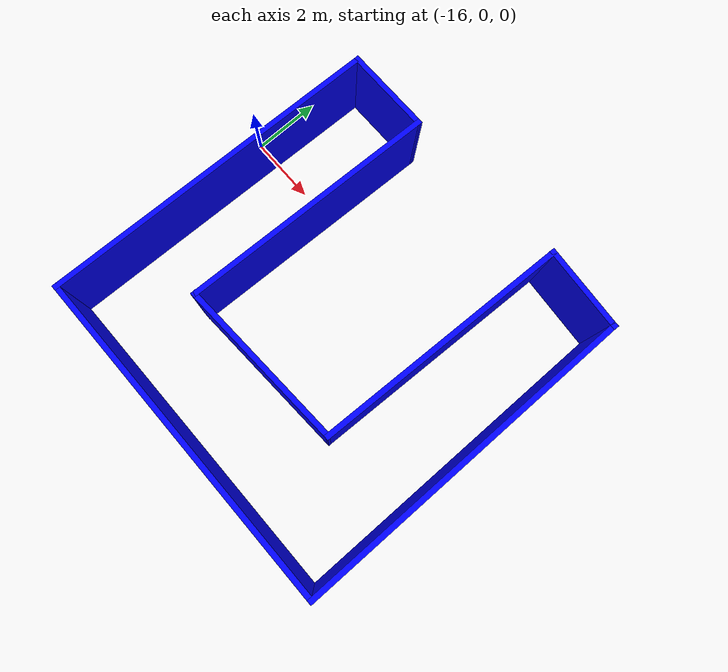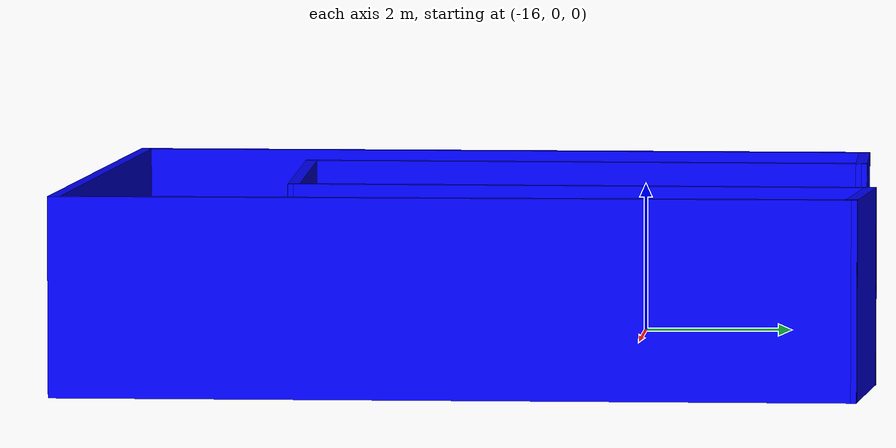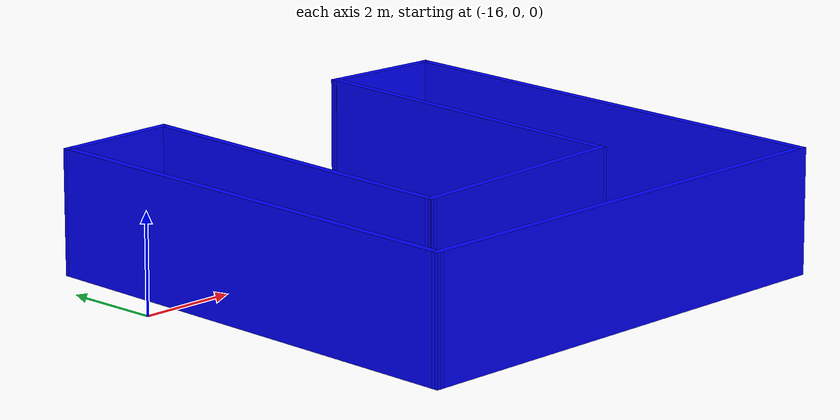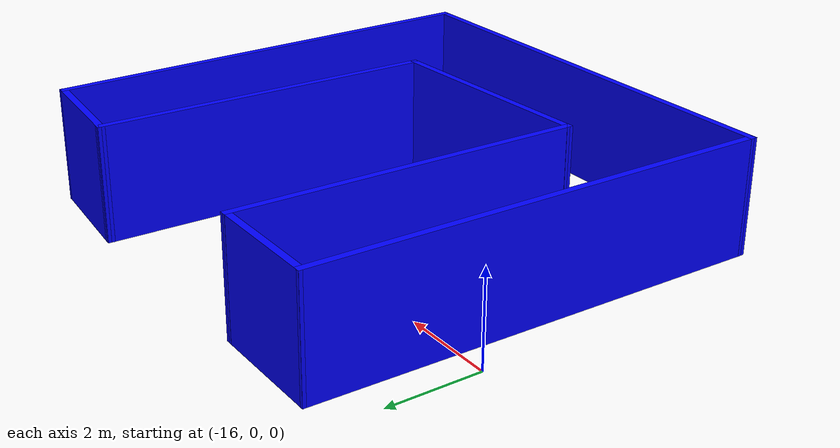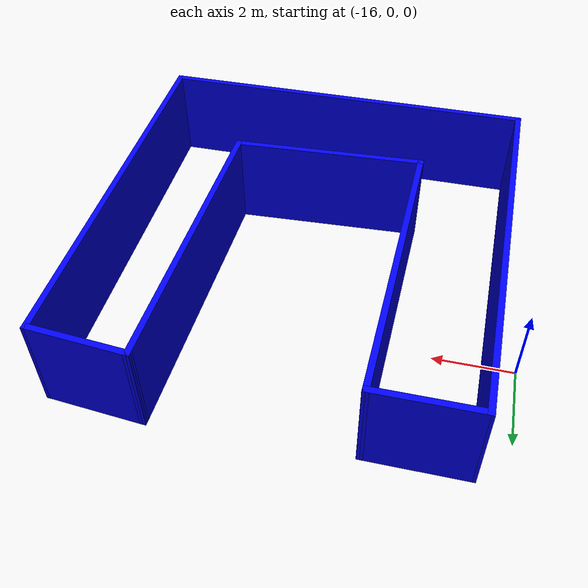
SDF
<?xml version='1.0'?>
<sdf version='1.6'>
  <model name='mybuilding'>
    <pose frame=''>-10.4816 -1.81713 0 0 -0 0</pose>
    <link name='Wall_12'>
      <collision name='Wall_12_Collision'>
        <geometry>
          <box>
            <size>10 0.15 2.5</size>
          </box>
        </geometry>
        <pose frame=''>0 0 1.25 0 -0 0</pose>
      </collision>
      <visual name='Wall_12_Visual'>
        <pose frame=''>0 0 1.25 0 -0 0</pose>
        <geometry>
          <box>
            <size>10 0.15 2.5</size>
          </box>
        </geometry>
        <material>
          <script>
            <uri>file://media/materials/scripts/gazebo.material</uri>
            <name>Gazebo/Grey</name>
          </script>
          <ambient>0 0 1 1</ambient>
        </material>
        <meta>
          <layer>0</layer>
        </meta>
      </visual>
      <pose frame=''>-0.002162 -5.02355 0 0 -0 3.14159</pose>
    </link>
    <link name='Wall_13'>
      <collision name='Wall_13_Collision'>
        <geometry>
          <box>
            <size>10 0.15 2.5</size>
          </box>
        </geometry>
        <pose frame=''>0 0 1.25 0 -0 0</pose>
      </collision>
      <visual name='Wall_13_Visual'>
        <pose frame=''>0 0 1.25 0 -0 0</pose>
        <geometry>
          <box>
            <size>10 0.15 2.5</size>
          </box>
        </geometry>
        <material>
          <script>
            <uri>file://media/materials/scripts/gazebo.material</uri>
            <name>Gazebo/Grey</name>
          </script>
          <ambient>0 0 1 1</ambient>
        </material>
        <meta>
          <layer>0</layer>
        </meta>
      </visual>
      <pose frame=''>-4.82343 -0.099642 0 0 -0 1.54973</pose>
    </link>
    <link name='Wall_15'>
      <collision name='Wall_15_Collision'>
        <geometry>
          <box>
            <size>2.50465 0.15 2.5</size>
          </box>
        </geometry>
        <pose frame=''>0 0 1.25 0 -0 0</pose>
      </collision>
      <visual name='Wall_15_Visual'>
        <pose frame=''>0 0 1.25 0 -0 0</pose>
        <geometry>
          <box>
            <size>2.50465 0.15 2.5</size>
          </box>
        </geometry>
        <material>
          <script>
            <uri>file://media/materials/scripts/gazebo.material</uri>
            <name>Gazebo/Grey</name>
          </script>
          <ambient>0 0 1 1</ambient>
        </material>
        <meta>
          <layer>0</layer>
        </meta>
      </visual>
      <pose frame=''>3.74946 4.92284 0 0 -0 3.05963</pose>
    </link>
    <link name='Wall_19'>
      <collision name='Wall_19_Collision'>
        <geometry>
          <box>
            <size>2.56917 0.15 2.5</size>
          </box>
        </geometry>
        <pose frame=''>0 0 1.25 0 -0 0</pose>
      </collision>
      <visual name='Wall_19_Visual'>
        <pose frame=''>0 0 1.25 0 -0 0</pose>
        <geometry>
          <box>
            <size>2.56917 0.15 2.5</size>
          </box>
        </geometry>
        <material>
          <script>
            <uri>file://media/materials/scripts/gazebo.material</uri>
            <name>Gazebo/Grey</name>
          </script>
          <ambient>0 0 1 1</ambient>
        </material>
        <meta>
          <layer>0</layer>
        </meta>
      </visual>
      <pose frame=''>-3.5101 4.82539 0 0 -0 0.000931</pose>
    </link>
    <link name='Wall_21'>
      <collision name='Wall_21_Collision'>
        <geometry>
          <box>
            <size>7.5 0.15 2.5</size>
          </box>
        </geometry>
        <pose frame=''>0 0 1.25 0 -0 0</pose>
      </collision>
      <visual name='Wall_21_Visual'>
        <pose frame=''>0 0 1.25 0 -0 0</pose>
        <geometry>
          <box>
            <size>7.5 0.15 2.5</size>
          </box>
        </geometry>
        <material>
          <script>
            <uri>file://media/materials/scripts/gazebo.material</uri>
            <name>Gazebo/Grey</name>
          </script>
          <ambient>0 0 1 1</ambient>
        </material>
        <meta>
          <layer>0</layer>
        </meta>
      </visual>
      <pose frame=''>-2.40421 1.15298 0 0 0 -1.59902</pose>
    </link>
    <link name='Wall_24'>
      <collision name='Wall_24_Collision'>
        <geometry>
          <box>
            <size>7.46573 0.15 2.5</size>
          </box>
        </geometry>
        <pose frame=''>0 0 1.25 0 -0 0</pose>
      </collision>
      <visual name='Wall_24_Visual'>
        <pose frame=''>0 0 1.25 0 -0 0</pose>
        <geometry>
          <box>
            <size>7.46573 0.15 2.5</size>
          </box>
        </geometry>
        <material>
          <script>
            <uri>file://media/materials/scripts/gazebo.material</uri>
            <name>Gazebo/Grey</name>
          </script>
          <ambient>0 0 1 1</ambient>
        </material>
        <meta>
          <layer>0</layer>
        </meta>
      </visual>
      <pose frame=''>2.45641 1.36332 0 0 0 -1.60352</pose>
    </link>
    <link name='Wall_26'>
      <collision name='Wall_26_Collision'>
        <geometry>
          <box>
            <size>5 0.15 2.5</size>
          </box>
        </geometry>
        <pose frame=''>0 0 1.25 0 -0 0</pose>
      </collision>
      <visual name='Wall_26_Visual'>
        <pose frame=''>0 0 1.25 0 -0 0</pose>
        <geometry>
          <box>
            <size>5 0.15 2.5</size>
          </box>
        </geometry>
        <material>
          <script>
            <uri>file://media/materials/scripts/gazebo.material</uri>
            <name>Gazebo/Grey</name>
          </script>
          <ambient>0 0 1 1</ambient>
        </material>
        <meta>
          <layer>0</layer>
        </meta>
      </visual>
      <pose frame=''>-0.085586 -2.40657 0 0 -0 0.04702</pose>
    </link>
    <link name='Wall_4'>
      <collision name='Wall_4_Collision'>
        <geometry>
          <box>
            <size>10 0.15 2.5</size>
          </box>
        </geometry>
        <pose frame=''>0 0 1.25 0 -0 0</pose>
      </collision>
      <visual name='Wall_4_Visual'>
        <pose frame=''>0 0 1.25 0 -0 0</pose>
        <geometry>
          <box>
            <size>10 0.15 2.5</size>
          </box>
        </geometry>
        <material>
          <script>
            <uri>file://media/materials/scripts/gazebo.material</uri>
            <name>Gazebo/Grey</name>
          </script>
          <ambient>0 0 1 1</ambient>
        </material>
        <meta>
          <layer>0</layer>
        </meta>
      </visual>
      <pose frame=''>4.92284 -0.098549 0 0 -0 1.5708</pose>
    </link>
    <static>1</static>
  </model>
</sdf>
